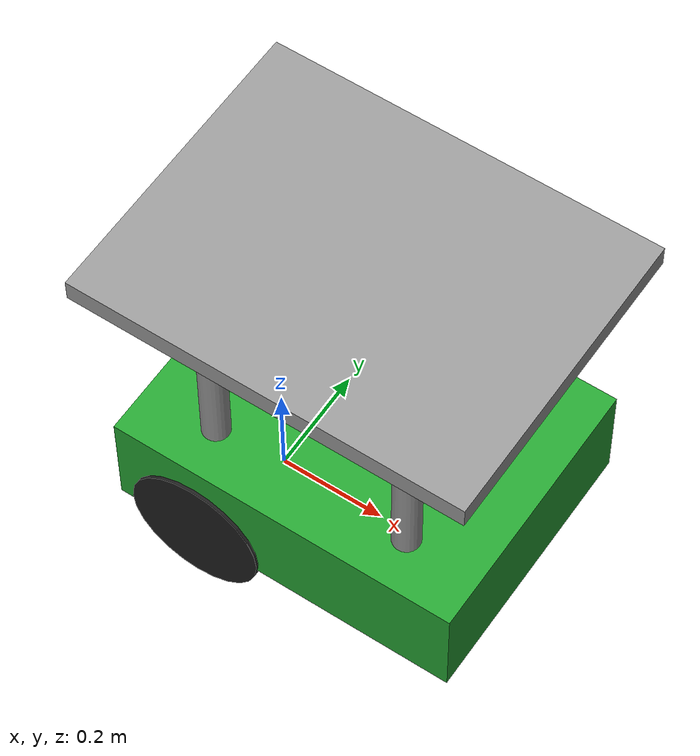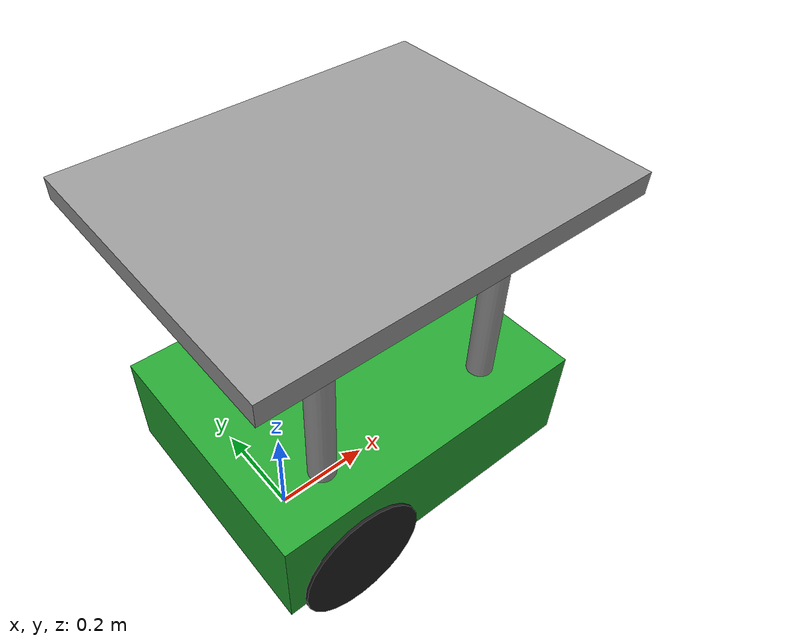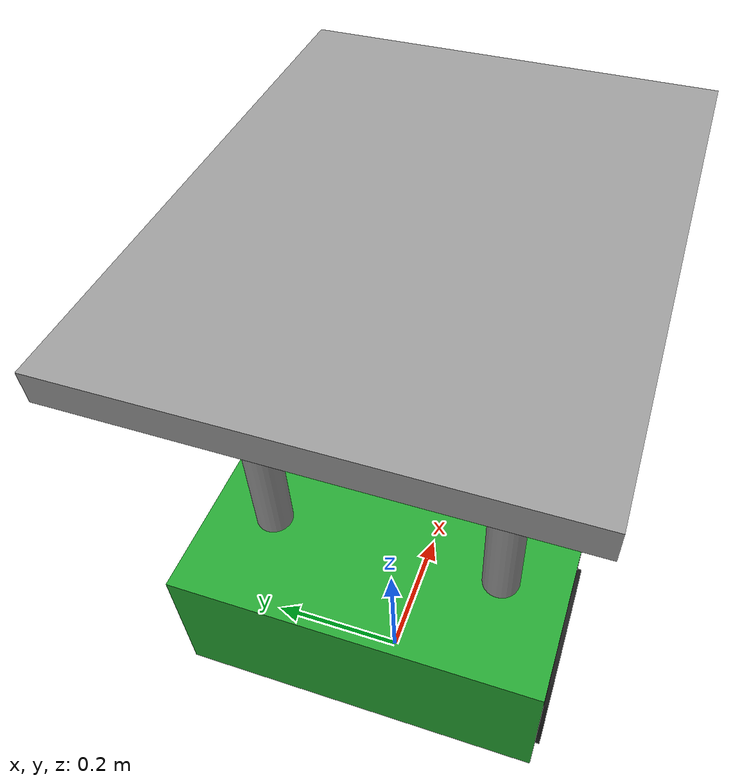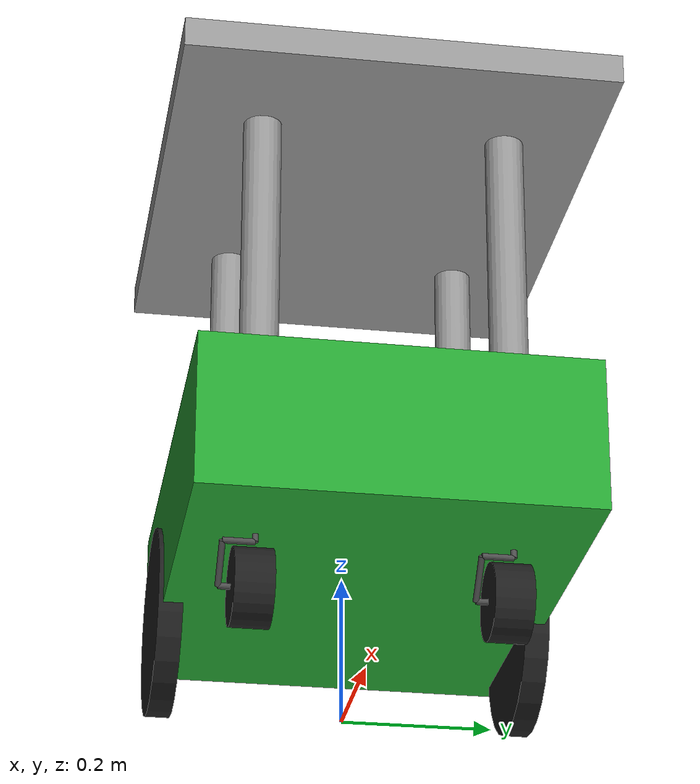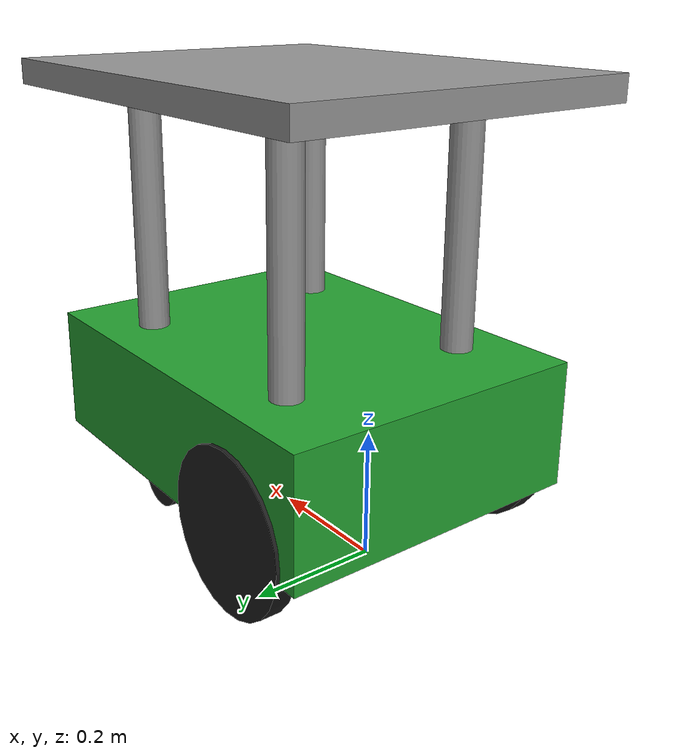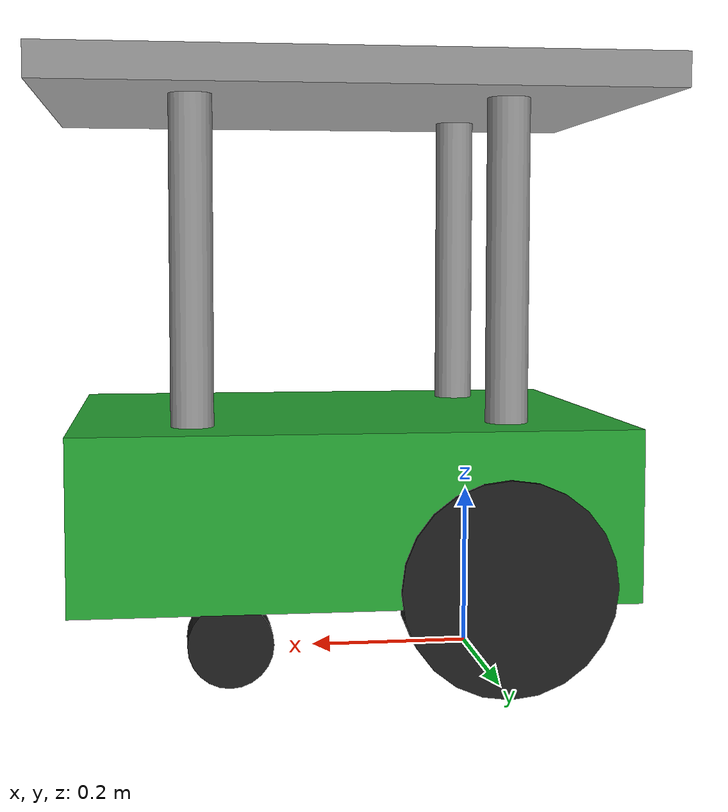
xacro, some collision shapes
<?xml version="1.0"?>
<robot name="atr_robot" xmlns:xacro="http://ros.org/wiki/xacro">

  <!-- atr -->

  <xacro:arg name="type" default="automower"/>
  <xacro:arg name="prefix" default=""/>

  <xacro:include filename="$(find atr_description)/urdf/$(arg type).urdf.xacro" />

  <!-- arm -->
  <xacro:atr_robot prefix="$(arg prefix)"/>

  <link name="world" />
  <joint name="$(arg prefix)base_link_joint" type="fixed">
      <origin xyz="0 0 0.125" rpy="0 0 0"/>
      <parent link="world"/>
      <child link="$(arg prefix)base_link"/>
    </joint>

</robot>

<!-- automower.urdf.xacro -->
<robot xmlns:xacro="http://www.ros.org/wiki/xacro">

  <!-- Included URDF/XACRO Files -->
  <xacro:include filename="$(find atr_description)/urdf/materials.urdf.xacro" />
  <xacro:include filename="$(find atr_description)/urdf/parameters.urdf.xacro" />
  <xacro:include filename="$(find atr_description)/urdf/wheel.urdf.xacro" />
  <xacro:include filename="$(find atr_description)/urdf/swivel_wheel.urdf.xacro" />
  <xacro:include filename="$(find atr_description)/urdf/sensorpos.urdf.xacro" />
  <xacro:include filename="$(find atr_description)/urdf/table.urdf.xacro" />

  <!-- WORLD -->

  <xacro:macro name="atr_robot" params="prefix">

    <!-- BASE-LINK -->
    <!--Actual body/chassis of the robot-->
    <link name="${prefix}base_link">
      <visual>
        <origin xyz="0 0 0" rpy="0 0 ${pi/2}" />
        <geometry>
          <mesh filename="package://atr_description/urdf/meshes/am_chassis.stl" scale="0.001 0.001 0.001"/>
          <box size="${base_x_size} ${base_y_size} ${base_z_size}"/>
        </geometry>
        <material name="DarkGreen" />
      </visual>
      <collision>
        <origin xyz="0.17 0 0.08" rpy="0 0 0 " />
        <geometry>
          <box size="0.65 0.50 0.20"/>
        </geometry>
      </collision>
      <inertial>
        <mass value="${base_mass}" />
        <origin xyz="0.165 0 -0.10" />
        <!--The 3x3 rotational inertia matrix. -->
        <xacro:box_inertia  m="${5*base_mass}" x="${base_x_size}" y="${base_y_size}" z="${base_z_size}"/>
      </inertial>
    </link>

    <gazebo reference="${prefix}base_link">
      <material>Gazebo/Green</material>
      <turnGravityOff>false</turnGravityOff>
    </gazebo>

    <!-- Wheels -->
    <xacro:wheel prefix="${prefix}" fb="back" lr="right" parent="base_link" translateY="-0.24" translateX="0.0" translateZ="0.0" wheel_radius="${wheel_radius}" wheel_height="${wheel_height}" flip="1"/>
    <xacro:wheel prefix="${prefix}" fb="back" lr="left" parent="base_link" translateY="0.24" translateX="0.0" translateZ="0.0" wheel_radius="${wheel_radius}" wheel_height="${wheel_height}" flip="1"/>

    <xacro:swivel_wheel prefix="${prefix}" fb="front" lr="right" parent="base_link" translateY="-0.16" translateX="0.355" translateZ="0.03" wheel_radius="${swivel_wheel_radius}" wheel_height="${swivel_wheel_height}" flip="0"/>
    <xacro:swivel_wheel prefix="${prefix}" fb="front" lr="left" parent="base_link" translateY="0.16" translateX="0.355" translateZ="0.03" wheel_radius="${swivel_wheel_radius}" wheel_height="${swivel_wheel_height}" flip="0"/>

    <!-- LOOP SENSORs -->
    <xacro:sensorpos prefix="${prefix}" name="loop_front_center" parent="base_link" translateX="0.38" translateY="0.0" translateZ="-0.04"/>
    <xacro:sensorpos prefix="${prefix}" name="loop_front_right" parent="base_link" translateX="0.38" translateY="-0.07" translateZ="-0.04"/>
    <xacro:sensorpos prefix="${prefix}" name="loop_rear_left" parent="base_link" translateX="-0.07" translateY="0.14" translateZ="-0.04"/>
    <xacro:sensorpos prefix="${prefix}" name="loop_rear_right" parent="base_link" translateX="-0.07" translateY="-0.14" translateZ="-0.04"/>

    <!-- CONFINEMENT SENSORs -->
    <xacro:sensorpos prefix="${prefix}" name="col_front_chassis" parent="base_link" translateX="0.55" translateY="0.0" translateZ="0.00"/>
    <xacro:sensorpos prefix="${prefix}" name="col_front_left" parent="base_link" translateX="0.43" translateY="0.24" translateZ="0.00"/>
    <xacro:sensorpos prefix="${prefix}" name="col_front_right" parent="base_link" translateX="0.43" translateY="-0.24" translateZ="0.00"/>
    <xacro:sensorpos prefix="${prefix}" name="col_rear_left" parent="base_link" translateX="-0.10" translateY="0.24" translateZ="0.0"/>
    <xacro:sensorpos prefix="${prefix}" name="col_rear_right" parent="base_link" translateX="-0.10" translateY="-0.24" translateZ="0.0"/>

    <!-- TABLE -->
    <xacro:table prefix="${prefix}" parent="base_link" translateY="-0.16" translateX="0.355" translateZ="0.03"/>

    <!-- CUTTING DISC-->

    <!-- Antenna -->
  </xacro:macro>
</robot>

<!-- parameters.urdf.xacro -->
<robot xmlns:xacro="http://www.ros.org/wiki/xacro">
<!-- PROPERTY LIST -->
  <!--All units in m-kg-s-radians unit system -->

  <!-- Main Body-base -->
  <xacro:property name="base_x_size" value="0.72" />
  <xacro:property name="base_y_size" value="0.55" />
  <xacro:property name="base_z_size" value="0.23" />
  <xacro:property name="base_mass" value="15" /> <!-- in kg-->
  <xacro:property name="base_z_origin_to_wheel_origin" value="-0.07" />

   <!-- Wheels -->

  <xacro:property name="wheel_radius" value="0.125" />
  <xacro:property name="wheel_height" value="0.032" />
  <xacro:property name="wheel_mass" value="0.3" /> <!-- in kg-->

  <xacro:property name="swivel_wheel_radius" value="0.05" />
  <xacro:property name="swivel_wheel_height" value="0.05" />
  <xacro:property name="swivel_wheel_mass" value="0.5" /> <!-- in kg-->

  <!-- Table -->

  <xacro:property name="pillar_radius" value="0.025" />
  <xacro:property name="front_pillar_length" value="0.53" />
  <xacro:property name="back_pillar_length" value="0.38" />
  <xacro:property name="pillar_mass" value="0.1" />

  <xacro:property name="table_length" value="0.72" />
  <xacro:property name="table_width" value="0.56" />
  <xacro:property name="table_height" value="0.04" />
  <xacro:property name="table_pillar_off_x" value="0.15" />
  <xacro:property name="table_pillar_off_y" value="0.095" />
  <xacro:property name="table_mass" value="1" /> <!-- in kg-->

  <xacro:property name="pillar_off_x" value="${pillar_radius+table_pillar_off_x-(table_length/2.0)}" />
  <xacro:property name="pillar_off_y" value="${pillar_radius+table_pillar_off_y-(table_width/2.0)}" />
  <xacro:property name="pillar_off_z_back" value="${back_pillar_length+(table_height/2.0)}" />
  <xacro:property name="pillar_off_z_front" value="${front_pillar_length+(table_height/2.0)}" />

  <!-- Inertias -->

  <!--Inertial macros for the box and cylinder. Units are kg*m^2-->
  <xacro:macro name="box_inertia" params="m x y z">
    <inertia  ixx="${m*(y*y+z*z)/12}" ixy = "0" ixz = "0"
              iyy="${m*(x*x+z*z)/12}" iyz = "0"
              izz="${m*(x*x+z*z)/12}" />
  </xacro:macro>

  <xacro:macro name="cylinder_inertia" params="m r h">
    <inertia  ixx="${m*(3*r*r+h*h)/12}" ixy = "0" ixz = "0"
              iyy="${m*(3*r*r+h*h)/12}" iyz = "0"
              izz="${m*r*r/2}" />
  </xacro:macro>

</robot>

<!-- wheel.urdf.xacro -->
<robot name="wheel" xmlns:xacro="http://www.ros.org/wiki/xacro">

  <xacro:macro name="wheel" params="prefix fb lr parent translateX translateY translateZ wheel_radius wheel_height flip"> <!--fb : front, back ; lr: left, right -->
    <link name="${prefix}${fb}_${lr}_wheel">
      <visual>
        <origin xyz="0 0 0" rpy="${flip*pi/2} 0 0" />
        <geometry>
          <cylinder length="${wheel_height}" radius="${wheel_radius}" />
        </geometry>
        <material name="Black" />
      </visual>
      <collision>
        <origin xyz="0 0 0" rpy="${flip*pi/2} 0 0" />
        <geometry>
          <cylinder length="${wheel_height}" radius="${wheel_radius}" />
        </geometry>
      </collision>
      <inertial>
        <mass value="${wheel_mass}" />
        <origin xyz="0 0 0" />
        <xacro:cylinder_inertia  m="${wheel_mass}" r="${wheel_radius}" h="${wheel_height}" />
      </inertial>
    </link>

    <gazebo reference="${prefix}${fb}_${lr}_wheel">
      <mu1 value="100.0"/>
      <mu2 value="100.0"/>
      <kp  value="10000000.0" />
      <kd  value="1.0" />
      <fdir1 value="1 0 0"/>
      <material>Gazebo/Black</material>
      <turnGravityOff>false</turnGravityOff>
    </gazebo>

    <joint name="${prefix}${fb}_${lr}_wheel_joint" type="continuous">
      <parent link="${prefix}${parent}"/>
      <child link="${prefix}${fb}_${lr}_wheel"/>
      <origin xyz="${translateX} ${translateY} ${translateZ}" rpy="0 0 0" />
      <axis xyz="0 1 0" rpy="0 0 0" />
      <limit effort="1000" velocity="100"/>
      <joint_properties damping="0.0" friction="0.0"/>
    </joint>

    <!-- Transmission is important to link the joints and the controller -->
    <transmission name="${prefix}${fb}_${lr}_wheel_joint_trans">
      <type>transmission_interface/SimpleTransmission</type>
      <joint name="${prefix}${fb}_${lr}_wheel_joint">
        <hardwareInterface>EffortJointInterface</hardwareInterface>
      </joint>
      <actuator name="${prefix}${fb}_${lr}_wheel_joint_motor">
        <hardwareInterface>EffortJointInterface</hardwareInterface>
        <mechanicalReduction>1</mechanicalReduction>
      </actuator>
    </transmission>

  </xacro:macro>
</robot>

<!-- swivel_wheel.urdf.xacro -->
<robot name="swivel_wheel" xmlns:xacro="http://www.ros.org/wiki/xacro">

  <!-- Wheels -->

  <xacro:macro name = "swivel_arm" params="prefix lr index l offset">
    <link name="${prefix}sw_arm_${lr}_${index}">

      <inertial>
        <mass value="0.01" />
        <origin xyz="0 0 0" />
        <xacro:cylinder_inertia  m="0.01" r="0.004" h="${l}" />
      </inertial>

      <visual>
        <geometry>
        <cylinder radius="0.004" length="${l}"/>
        </geometry>
        <material name="silver">
         <color rgba="0.3 0.3 0.3 1"/>
        </material>
        <origin rpy="0 0 0" xyz="${offset}" />
      </visual>
    </link>
  </xacro:macro>

  <xacro:macro name="swivel_wheel" params="prefix fb lr parent translateX translateY translateZ wheel_radius wheel_height flip"> <!--fb : front, back ; lr: left, right -->

    <!-- First link connected to parent-->
    <xacro:swivel_arm prefix="${prefix}" lr = "${lr}" index = "1" l = "0.06" offset="0 0 -0.03"/>

    <joint name="${prefix}sw_arm_${lr}_connect_1" type="continuous">
      <origin xyz="${translateX} ${translateY} ${translateZ}" rpy="0 0 0" />
      <axis xyz="0 0 1" rpy="0 0 0" />
      <parent link="${prefix}${parent}"/>
      <child link="${prefix}sw_arm_${lr}_1"/>
      <limit effort="100" velocity="100"/>
      <joint_properties damping="0.0" friction="0.0"/>
    </joint>

    <!-- Second link connected to first-->
    <xacro:swivel_arm prefix="${prefix}" lr = "${lr}" index = "2" l = "0.04" offset="0 0 0.02"/>

    <joint name="${prefix}sw_arm_${lr}_connect_2" type="fixed">
      <origin rpy="1.5707 0 0" xyz="0 0 -0.06" />
      <parent link="${prefix}sw_arm_${lr}_1"/>
      <child link="${prefix}sw_arm_${lr}_2"/>
    </joint>

    <!-- Third link connected to second-->
    <xacro:swivel_arm prefix="${prefix}" lr = "${lr}" index = "3" l = "0.06" offset="0 0 -0.03"/>

    <joint name="${prefix}sw_arm_${lr}_connect_3" type="fixed">
      <origin rpy="-1.5707 0 -0.78" xyz="0 0 0.04" />
      <parent link="${prefix}sw_arm_${lr}_2"/>
      <child link="${prefix}sw_arm_${lr}_3"/>
    </joint>

    <!-- Fourth link connected to third-->
    <xacro:swivel_arm prefix="${prefix}" lr = "${lr}" index = "4" l = "0.04" offset="0 0 -0.02"/>

    <joint name="${prefix}sw_arm_${lr}_connect_4" type="fixed">
      <origin rpy="1.5707 0 0" xyz="0 0 -0.060" />
      <parent link="${prefix}sw_arm_${lr}_3"/>
      <child link="${prefix}sw_arm_${lr}_4"/>
    </joint>

    <!-- Wheel connected to fourth-->
    <link name="${prefix}${fb}_${lr}_swivel_wheel">
      <visual>
        <origin xyz="0 0 0" rpy="${flip*pi/2} 0 0" />
        <geometry>
          <cylinder length="${wheel_height}" radius="${wheel_radius}" />
        </geometry>
        <material name="Black" />
      </visual>
      <collision>
        <origin xyz="0 0 0" rpy="0 0 0" />
        <geometry>
          <cylinder length="${wheel_height}" radius="${wheel_radius}" />
        </geometry>
      </collision>
      <inertial>
        <mass value="${swivel_wheel_mass}" />
        <origin xyz="0 0 0" />
        <xacro:cylinder_inertia  m="${swivel_wheel_mass}" r="${wheel_radius}" h="${wheel_height}" />
      </inertial>
    </link>

    <gazebo reference="${prefix}${fb}_${lr}_swivel_wheel">
      <mu1 value="0.8"/>
      <mu2 value="0.8"/>
      <kp  value="10000000.0" />
      <kd  value="1.0" />
      <fdir1 value="1 0 0"/>
      <material>Gazebo/Black</material>
      <turnGravityOff>false</turnGravityOff>
    </gazebo>

    <joint name="${prefix}${fb}_${lr}_swivel_wheel_joint" type="continuous">
      <parent link="${prefix}sw_arm_${lr}_4"/>
      <child link="${prefix}${fb}_${lr}_swivel_wheel"/>
      <origin rpy="0 0 0" xyz="0 0 -0.04" />
      <axis xyz="0 0 1" rpy="0 0 0" />
      <limit effort="100" velocity="100"/>
      <joint_properties damping="0.0" friction="0.0"/>
    </joint>

    <!-- Transmission is important to link the joints and the controller -->

  </xacro:macro>
</robot>

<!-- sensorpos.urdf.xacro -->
<robot name="sensorpos" xmlns:xacro="http://www.ros.org/wiki/xacro">

 <!-- NOTE! Must have a mass/inertial so that Gazebo does not ignore these... -->
  <xacro:macro name="sensorpos" params="prefix name parent translateX translateY translateZ ">
    <link name="${prefix}${name}">
		<inertial>
			<origin xyz="0 0 1" rpy="0 0 0"/>
			<mass value="0.01"/>
			<inertia
				ixx="0.001" ixy="0.0" ixz="0.0"
				iyy="0.001" iyz="0.0"
				izz="0.001"/>
		</inertial>
    </link>

    <gazebo reference="${prefix}${name}">
      <turnGravityOff>true</turnGravityOff>
      <material>Gazebo/Orange</material>
    </gazebo>

    <joint name="${prefix}${name}_joint" type="fixed">
      <parent link="${prefix}${parent}"/>
      <child link="${prefix}${name}"/>
      <origin xyz="${translateX} ${translateY} ${translateZ}" rpy="0 0 0" />
    </joint>

  </xacro:macro>
</robot>

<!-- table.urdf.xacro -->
<robot name="table" xmlns:xacro="http://www.ros.org/wiki/xacro">

  <xacro:macro name="pillar" params="prefix fb lr length parent translateX translateY translateZ">
    <link name="${prefix}pillar_${fb}_${lr}">
      <visual>
        <origin xyz="0 0 ${length/2.0}" rpy="0 0 0" />
        <geometry>
          <cylinder length="${length}" radius="${pillar_radius}" />
        </geometry>
        <material name="Gray" />
      </visual>
      <collision>
        <origin xyz="0 0 ${length/2.0}" rpy="0 0 0" />
        <geometry>
          <cylinder length="${length}" radius="${pillar_radius}" />
        </geometry>
      </collision>
      <inertial>
        <mass value="${pillar_mass}" />
        <origin xyz="0 0 0" />
        <xacro:cylinder_inertia  m="${pillar_mass}" r="${pillar_radius}" h="${length}" />
      </inertial>
    </link>

    <joint name="${prefix}${fb}_${lr}_pillar_joint" type="fixed">
      <parent link="${prefix}${parent}"/>
      <child link="${prefix}pillar_${fb}_${lr}"/>
      <origin xyz="${translateX} ${translateY} ${translateZ}" rpy="0 0 0" />
    </joint>

    <gazebo reference="${prefix}pillar_${fb}_${lr}">
      <mu1 value="100.0"/>
      <mu2 value="100.0"/>
      <kp  value="10000000.0" />
      <kd  value="1.0" />
      <fdir1 value="1 0 0"/>
      <material>Gazebo/Grey</material>
      <turnGravityOff>false</turnGravityOff>
    </gazebo>

  </xacro:macro>

  <xacro:macro name="table" params="prefix parent translateX translateY translateZ">

    <xacro:pillar prefix="${prefix}" fb="front" lr="right" length="${front_pillar_length}" parent="${parent}" translateX="${translateX}" translateY="${translateY}" translateZ="${translateZ}"/>

    <link name="${prefix}table">
      <visual>
        <geometry>
          <box size="${table_length} ${table_width} ${table_height}"/>
        </geometry>
        <material name="Gray"/>
      </visual>
      <collision>
        <geometry>
          <box size="${table_length} ${table_width} ${table_height}"/>
        </geometry>
      </collision>
      <xacro:box_inertia  m="${5*table_mass}" x="${table_length}" y="${table_width}" z="${table_height}"/>
    </link>

    <joint name="${prefix}table_joint" type="fixed">
      <parent link="${prefix}pillar_front_right"/>
      <child link="${prefix}table"/>
      <origin xyz="${pillar_off_x}
                   ${-pillar_off_y}
                   ${pillar_off_z_front}" />
    </joint>

    <xacro:pillar prefix="${prefix}" fb="back" lr="right" length="${back_pillar_length}" parent="table"
      translateX="${pillar_off_x}"
      translateY="${pillar_off_y}"
      translateZ="${-pillar_off_z_back}"/>

    <xacro:pillar prefix="${prefix}" fb="back" lr="left" length="${back_pillar_length}" parent="table"
      translateX="${pillar_off_x}"
      translateY="${-pillar_off_y}"
      translateZ="${-pillar_off_z_back}"/>

    <xacro:pillar prefix="${prefix}" fb="front" lr="left" length="${front_pillar_length}" parent="table"
      translateX="${-pillar_off_x}"
      translateY="${-pillar_off_y}"
      translateZ="${-pillar_off_z_front}"/>

  </xacro:macro>
</robot>
